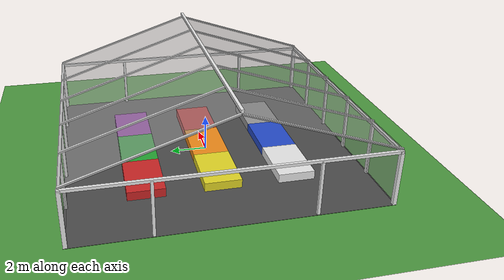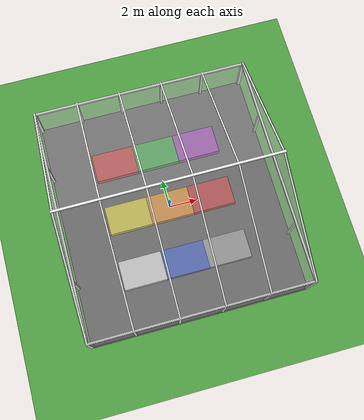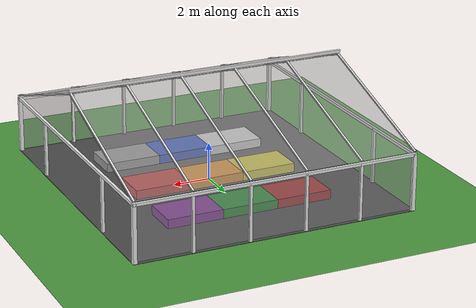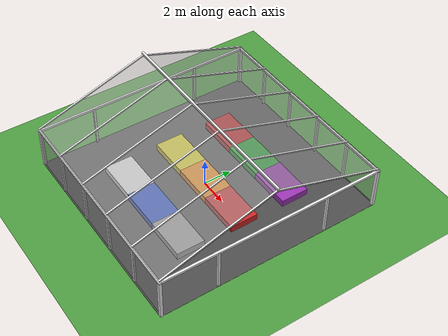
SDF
<?xml version="1.0" ?>
<sdf version="1.6">
  <world name="greenhouse_world">

    <include>
      <uri>model://sun</uri>
    </include>

    <scene>
      <sky>
        <clouds>
          <speed>12</speed>
        </clouds>
      </sky>
      <ambient>0.6 0.6 0.6 1</ambient>
      <background>0.7 0.7 0.7 1</background>
      <shadows>true</shadows>
    </scene>

    <model name="grass_ground">
      <static>true</static>
      <link name="link">
        <collision name="collision">
          <geometry>
            <plane>
              <normal>0 0 1</normal>
              <size>100 100</size> </plane>
          </geometry>
          <surface>
            <friction>
              <ode>
                <mu>100</mu>
                <mu2>50</mu2>
              </ode>
            </friction>
          </surface>
        </collision>

        <visual name="visual">
          <cast_shadows>false</cast_shadows>
          <geometry>
            <plane>
              <normal>0 0 1</normal>
              <size>100 100</size>
            </plane>
          </geometry>
          <material>
            <script>
              <uri>file://media/materials/scripts/gazebo.material</uri>
              <name>Gazebo/Grass</name>
            </script>
          </material>
        </visual>
      </link>
    </model>

    <include>
      <uri>model://greenhouse</uri>
      <pose>0 0 0 0 0 0</pose>
    </include>
    <include>
      <name>row_1_1</name>
      <uri>model://plant_rose</uri>
      <pose>-3 4 0 0 0 0</pose>
    </include>
    <include>
      <name>row_1_2</name>
      <uri>model://plant_cactus</uri>
      <pose>0 4 0 0 0 0</pose>
    </include>
    <include>
      <name>row_1_3</name>
      <uri>model://plant_orchid</uri>
      <pose>3 4 0 0 0 0</pose>
    </include>

    <include>
      <name>row_2_1</name>
      <uri>model://plant_chrysanthemum</uri>
      <pose>-3 0 0 0 0 0</pose>
    </include>
    <include> <name>row_2_2</name>
      <uri>model://plant_sunflower</uri>
      <pose>0 0 0 0 0 0</pose>
    </include>
    <include>
      <name>row_2_3</name>
      <uri>model://plant_tulip</uri>
      <pose>3 0 0 0 0 0</pose>
    </include>

    <include>
      <name>row_3_1</name>
      <uri>model://plant_lily</uri>
      <pose>-3 -4 0 0 0 0</pose>
    </include>
    <include>
      <name>row_3_2</name>
      <uri>model://plant_hydrangea</uri>
      <pose>0 -4 0 0 0 0</pose>
    </include>
    <include>
      <name>row_3_3</name>
      <uri>model://plant_succulent</uri>
      <pose>3 -4 0 0 0 0</pose>
    </include>
  </world>
</sdf>

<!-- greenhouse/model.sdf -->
<sdf version="1.6">
  <model name="greenhouse">
    <static>true</static>
    <pose>0 0 0 0 0 0</pose>

    <link name="floor">
      <visual name="floor_vis">
        <pose>0 0 0.01 0 0 0</pose>
        <geometry><box><size>15.2 16.2 0.02</size></box></geometry>
        <material><script><name>Gazebo/DarkGrey</name></script></material>
      </visual>
      <collision name="floor_col">
        <pose>0 0 0.01 0 0 0</pose>
        <geometry><box><size>15.2 16.2 0.02</size></box></geometry>
      </collision>
    </link>

    <link name="white_pillars">

      <visual name="p_n1"><pose>-7.5 8 1.5 0 0 0</pose><geometry><box><size>0.2 0.2 3.0</size></box></geometry><material><script><name>Gazebo/White</name></script></material></visual>
      <visual name="p_n2"><pose>-4.5 8 1.5 0 0 0</pose><geometry><box><size>0.15 0.15 3.0</size></box></geometry><material><script><name>Gazebo/White</name></script></material></visual>
      <visual name="p_n3"><pose>-1.5 8 1.5 0 0 0</pose><geometry><box><size>0.15 0.15 3.0</size></box></geometry><material><script><name>Gazebo/White</name></script></material></visual>
      <visual name="p_n5"><pose>1.5 8 1.5 0 0 0</pose><geometry><box><size>0.15 0.15 3.0</size></box></geometry><material><script><name>Gazebo/White</name></script></material></visual>
      <visual name="p_n6"><pose>4.5 8 1.5 0 0 0</pose><geometry><box><size>0.15 0.15 3.0</size></box></geometry><material><script><name>Gazebo/White</name></script></material></visual>
      <visual name="p_n7"><pose>7.5 8 1.5 0 0 0</pose><geometry><box><size>0.2 0.2 3.0</size></box></geometry><material><script><name>Gazebo/White</name></script></material></visual>

      <visual name="p_s1"><pose>-7.5 -8 1.5 0 0 0</pose><geometry><box><size>0.2 0.2 3.0</size></box></geometry><material><script><name>Gazebo/White</name></script></material></visual>
      <visual name="p_s2"><pose>-4.5 -8 1.5 0 0 0</pose><geometry><box><size>0.15 0.15 3.0</size></box></geometry><material><script><name>Gazebo/White</name></script></material></visual>
      <visual name="p_s3"><pose>-1.5 -8 1.5 0 0 0</pose><geometry><box><size>0.15 0.15 3.0</size></box></geometry><material><script><name>Gazebo/White</name></script></material></visual>
      <visual name="p_s5"><pose>1.5 -8 1.5 0 0 0</pose><geometry><box><size>0.15 0.15 3.0</size></box></geometry><material><script><name>Gazebo/White</name></script></material></visual>
      <visual name="p_s6"><pose>4.5 -8 1.5 0 0 0</pose><geometry><box><size>0.15 0.15 3.0</size></box></geometry><material><script><name>Gazebo/White</name></script></material></visual>
      <visual name="p_s7"><pose>7.5 -8 1.5 0 0 0</pose><geometry><box><size>0.2 0.2 3.0</size></box></geometry><material><script><name>Gazebo/White</name></script></material></visual>

      <visual name="p_e1"><pose>7.5 4 1.5 0 0 0</pose><geometry><box><size>0.15 0.15 3.0</size></box></geometry><material><script><name>Gazebo/White</name></script></material></visual>
      <visual name="p_e3"><pose>7.5 -4 1.5 0 0 0</pose><geometry><box><size>0.15 0.15 3.0</size></box></geometry><material><script><name>Gazebo/White</name></script></material></visual>

      <visual name="p_w1"><pose>-7.5 4 1.5 0 0 0</pose><geometry><box><size>0.15 0.15 3.0</size></box></geometry><material><script><name>Gazebo/White</name></script></material></visual>
      <visual name="p_w2"><pose>-7.5 -4 1.5 0 0 0</pose><geometry><box><size>0.15 0.15 3.0</size></box></geometry><material><script><name>Gazebo/White</name></script></material></visual>

      <visual name="beam_n"><pose>0 8 3.0 0 0 0</pose><geometry><box><size>15.2 0.15 0.15</size></box></geometry><material><script><name>Gazebo/White</name></script></material></visual>
      <visual name="beam_s"><pose>0 -8 3.0 0 0 0</pose><geometry><box><size>15.2 0.15 0.15</size></box></geometry><material><script><name>Gazebo/White</name></script></material></visual>
      <visual name="beam_e"><pose>7.5 0 3.0 0 0 0</pose><geometry><box><size>0.15 16.2 0.15</size></box></geometry><material><script><name>Gazebo/White</name></script></material></visual>
      <visual name="beam_w"><pose>-7.5 0 3.0 0 0 0</pose><geometry><box><size>0.15 16.2 0.15</size></box></geometry><material><script><name>Gazebo/White</name></script></material></visual>

      <collision name="col_n"><pose>0 8 1.5 0 0 0</pose><geometry><box><size>15.0 0.2 3.0</size></box></geometry></collision>
      <collision name="col_s"><pose>0 -8 1.5 0 0 0</pose><geometry><box><size>15.0 0.2 3.0</size></box></geometry></collision>
      <collision name="col_e1"><pose>7.5 4 1.5 0 0 0</pose><geometry><box><size>0.2 8.0 3.0</size></box></geometry></collision>
      <collision name="col_e2"><pose>7.5 -4 1.5 0 0 0</pose><geometry><box><size>0.2 8.0 3.0</size></box></geometry></collision>
      <collision name="col_w1"><pose>-7.5 4 1.5 0 0 0</pose><geometry><box><size>0.2 8.0 3.0</size></box></geometry></collision>
      <collision name="col_w2"><pose>-7.5 -4 1.5 0 0 0</pose><geometry><box><size>0.2 8.0 3.0</size></box></geometry></collision>
    </link>

    <link name="roof_frame">
      <visual name="ridge_beam"><pose>0 0 6.0 0 0 0</pose><geometry><box><size>15.2 0.15 0.15</size></box></geometry><material><script><name>Gazebo/White</name></script></material></visual>

      <visual name="rafter_L1"><pose>-7.5 4 4.5 -0.32 0 0</pose><geometry><box><size>0.1 8.5 0.1</size></box></geometry><material><script><name>Gazebo/White</name></script></material></visual>
      <visual name="rafter_L2"><pose>-4.5 4 4.5 -0.32 0 0</pose><geometry><box><size>0.1 8.5 0.1</size></box></geometry><material><script><name>Gazebo/White</name></script></material></visual>
      <visual name="rafter_L3"><pose>-1.5 4 4.5 -0.32 0 0</pose><geometry><box><size>0.1 8.5 0.1</size></box></geometry><material><script><name>Gazebo/White</name></script></material></visual>
      <visual name="rafter_L5"><pose>1.5 4 4.5 -0.32 0 0</pose><geometry><box><size>0.1 8.5 0.1</size></box></geometry><material><script><name>Gazebo/White</name></script></material></visual>
      <visual name="rafter_L6"><pose>4.5 4 4.5 -0.32 0 0</pose><geometry><box><size>0.1 8.5 0.1</size></box></geometry><material><script><name>Gazebo/White</name></script></material></visual>
      <visual name="rafter_L7"><pose>7.5 4 4.5 -0.32 0 0</pose><geometry><box><size>0.1 8.5 0.1</size></box></geometry><material><script><name>Gazebo/White</name></script></material></visual>

      <visual name="rafter_R1"><pose>-7.5 -4 4.5 0.32 0 0</pose><geometry><box><size>0.1 8.5 0.1</size></box></geometry><material><script><name>Gazebo/White</name></script></material></visual>
      <visual name="rafter_R2"><pose>-4.5 -4 4.5 0.32 0 0</pose><geometry><box><size>0.1 8.5 0.1</size></box></geometry><material><script><name>Gazebo/White</name></script></material></visual>
      <visual name="rafter_R3"><pose>-1.5 -4 4.5 0.32 0 0</pose><geometry><box><size>0.1 8.5 0.1</size></box></geometry><material><script><name>Gazebo/White</name></script></material></visual>
      <visual name="rafter_R5"><pose>1.5 -4 4.5 0.32 0 0</pose><geometry><box><size>0.1 8.5 0.1</size></box></geometry><material><script><name>Gazebo/White</name></script></material></visual>
      <visual name="rafter_R6"><pose>4.5 -4 4.5 0.32 0 0</pose><geometry><box><size>0.1 8.5 0.1</size></box></geometry><material><script><name>Gazebo/White</name></script></material></visual>
      <visual name="rafter_R7"><pose>7.5 -4 4.5 0.32 0 0</pose><geometry><box><size>0.1 8.5 0.1</size></box></geometry><material><script><name>Gazebo/White</name></script></material></visual>
    </link>

    <link name="glass_shell">
      <visual name="glass_n">
        <pose>0 8 1.5 0 0 0</pose><geometry><box><size>15.0 0.05 2.8</size></box></geometry>
        <material><script><name>Gazebo/GreyTransparent</name></script></material>
      </visual>
      <visual name="glass_s">
        <pose>0 -8 1.5 0 0 0</pose><geometry><box><size>15.0 0.05 2.8</size></box></geometry>
        <material><script><name>Gazebo/GreyTransparent</name></script></material>
      </visual>

      <visual name="roof_L">
        <pose>0 4 4.5 -0.32 0 0</pose>
        <geometry><box><size>15.2 8.5 0.02</size></box></geometry>
        <material><script><name>Gazebo/GreyTransparent</name></script></material>
      </visual>
      <visual name="roof_R">
        <pose>0 -4 4.5 0.32 0 0</pose>
        <geometry><box><size>15.2 8.5 0.02</size></box></geometry>
        <material><script><name>Gazebo/GreyTransparent</name></script></material>
      </visual>
    </link>

  </model>
</sdf>

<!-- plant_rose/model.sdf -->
<sdf version="1.6">
  <model name="plant_rose">
    <static>true</static>
    <link name="link">
      <pose>0 0 0.25 0 0 0</pose>
      <collision name="collision">
        <geometry>
          <box>
            <size>3 2 0.5</size>
          </box>
        </geometry>
      </collision>
      <visual name="visual">
        <geometry>
          <box>
            <size>3 2 0.5</size>
          </box>
        </geometry>
        <material>
          <script>
            <uri>file://media/materials/scripts/gazebo.material</uri>
            <name>Gazebo/Red</name>
          </script>
        </material>
      </visual>
    </link>
  </model>
</sdf>

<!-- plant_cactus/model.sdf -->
<sdf version="1.6">
  <model name="plant_cactus">
    <static>true</static>
    <link name="link">
      <pose>0 0 0.25 0 0 0</pose>
      <collision name="collision">
        <geometry>
          <box>
            <size>3 2 0.5</size>
          </box>
        </geometry>
      </collision>
      <visual name="visual">
        <geometry>
          <box>
            <size>3 2 0.5</size>
          </box>
        </geometry>
        <material>
          <script>
            <uri>file://media/materials/scripts/gazebo.material</uri>
            <name>Gazebo/Green</name>
          </script>
        </material>
      </visual>
    </link>
  </model>
</sdf>

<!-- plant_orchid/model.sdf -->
<sdf version="1.6">
  <model name="plant_orchid">
    <static>true</static>
    <link name="link">
      <pose>0 0 0.25 0 0 0</pose>
      <collision name="collision">
        <geometry>
          <box>
            <size>3 2 0.5</size>
          </box>
        </geometry>
      </collision>
      <visual name="visual">
        <geometry>
          <box>
            <size>3 2 0.5</size>
          </box>
        </geometry>
        <material>
          <script>
            <uri>file://media/materials/scripts/gazebo.material</uri>
            <name>Gazebo/Purple</name>
          </script>
        </material>
      </visual>
    </link>
  </model>
</sdf>

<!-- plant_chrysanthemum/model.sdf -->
<sdf version="1.6">
  <model name="plant_chrysanthemum">
    <static>true</static>
    <link name="link">
      <pose>0 0 0.25 0 0 0</pose>
      <collision name="collision">
        <geometry>
          <box>
            <size>3 2 0.5</size>
          </box>
        </geometry>
      </collision>
      <visual name="visual">
        <geometry>
          <box>
            <size>3 2 0.5</size>
          </box>
        </geometry>
        <material>
          <script>
            <uri>file://media/materials/scripts/gazebo.material</uri>
            <name>Gazebo/Yellow</name>
          </script>
        </material>
      </visual>
    </link>
  </model>
</sdf>

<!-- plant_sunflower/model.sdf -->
<sdf version="1.6">
  <model name="plant_sunflower">
    <static>true</static>
    <link name="link">
      <pose>0 0 0.25 0 0 0</pose>
      <collision name="collision">
        <geometry>
          <box>
            <size>3 2 0.5</size>
          </box>
        </geometry>
      </collision>
      <visual name="visual">
        <geometry>
          <box>
            <size>3 2 0.5</size>
          </box>
        </geometry>
        <material>
          <script>
            <uri>file://media/materials/scripts/gazebo.material</uri>
            <name>Gazebo/Orange</name>
          </script>
        </material>
      </visual>
    </link>
  </model>
</sdf>

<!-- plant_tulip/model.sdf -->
<sdf version="1.6">
  <model name="plant_tulip">
    <static>true</static>
    <link name="link">
      <pose>0 0 0.25 0 0 0</pose>
      <collision name="collision">
        <geometry>
          <box>
            <size>3 2 0.5</size>
          </box>
        </geometry>
      </collision>
      <visual name="visual">
        <geometry>
          <box>
            <size>3 2 0.5</size>
          </box>
        </geometry>
        <material>
          <script>
            <uri>file://media/materials/scripts/gazebo.material</uri>
            <name>Gazebo/RedBright</name>
          </script>
        </material>
      </visual>
    </link>
  </model>
</sdf>

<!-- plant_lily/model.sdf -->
<sdf version="1.6">
  <model name="plant_lily">
    <static>true</static>
    <link name="link">
      <pose>0 0 0.25 0 0 0</pose>
      <collision name="collision">
        <geometry>
          <box>
            <size>3 2 0.5</size>
          </box>
        </geometry>
      </collision>
      <visual name="visual">
        <geometry>
          <box>
            <size>3 2 0.5</size>
          </box>
        </geometry>
        <material>
          <script>
            <uri>file://media/materials/scripts/gazebo.material</uri>
            <name>Gazebo/White</name>
          </script>
        </material>
      </visual>
    </link>
  </model>
</sdf>

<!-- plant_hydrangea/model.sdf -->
<sdf version="1.6">
  <model name="plant_hydrangea">
    <static>true</static>
    <link name="link">
      <pose>0 0 0.25 0 0 0</pose>
      <collision name="collision">
        <geometry>
          <box>
            <size>3 2 0.5</size>
          </box>
        </geometry>
      </collision>
      <visual name="visual">
        <geometry>
          <box>
            <size>3 2 0.5</size>
          </box>
        </geometry>
        <material>
          <script>
            <uri>file://media/materials/scripts/gazebo.material</uri>
            <name>Gazebo/Blue</name>
          </script>
        </material>
      </visual>
    </link>
  </model>
</sdf>

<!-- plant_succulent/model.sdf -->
<sdf version="1.6">
  <model name="plant_succulent">
    <static>true</static>
    <link name="link">
      <pose>0 0 0.25 0 0 0</pose>
      <collision name="collision">
        <geometry>
          <box>
            <size>3 2 0.5</size>
          </box>
        </geometry>
      </collision>
      <visual name="visual">
        <geometry>
          <box>
            <size>3 2 0.5</size>
          </box>
        </geometry>
        <material>
          <script>
            <uri>file://media/materials/scripts/gazebo.material</uri>
            <name>Gazebo/Grey</name>
          </script>
        </material>
      </visual>
    </link>
  </model>
</sdf>
